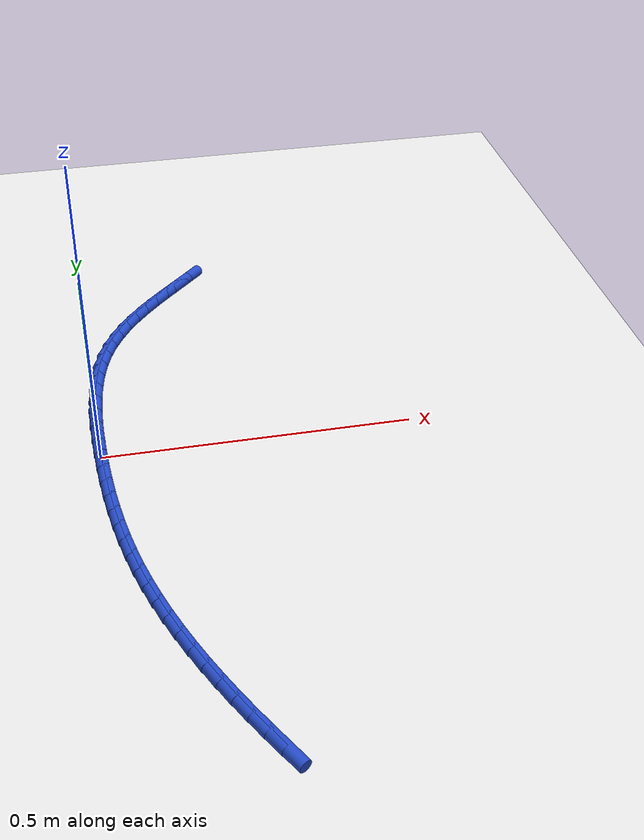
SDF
<sdf version="1.6">
 <world name="default">
  <model name="ground_plane">
   <static>1</static>
   <link name="link">
    <collision name="collision">
     <geometry><plane><normal>0 0 1</normal><size>100 100</size></plane></geometry>
     <surface><friction><ode><mu>100</mu><mu2>50</mu2></ode></friction></surface>
    </collision>
    <visual name="visual">
     <cast_shadows>0</cast_shadows>
     <geometry><plane><normal>0 0 1</normal><size>100 100</size></plane></geometry>
     <material>
      <script><uri>file://media/materials/scripts/gazebo.material</uri><name>Gazebo/WhiteGlow</name></script>
     </material>
    </visual>
   </link>
  </model>
  <model name="line">
   <link name="link_0">
    <pose>-3.0357660829594124e-18 4.85722573273506e-17 0.01 0 1.57 -1.5546843273915216</pose>
    <collision name="collision">
     <geometry><cylinder><radius>0.01</radius><length>0.08</length></cylinder></geometry>
    </collision>
    <visual name="visual">
     <material>
      <script><name>Gazebo/Blue</name><uri>file://media/materials/scripts/gazebo.material</uri></script>
     </material>
     <geometry><cylinder><radius>0.01</radius><length>0.08</length></cylinder></geometry>
    </visual>
   </link>
   <link name="link_1">
    <pose>-0.0005251453368446715 0.032590610323636665 0.01 0 1.57 1.5620680607582746</pose>
    <collision name="collision">
     <geometry><cylinder><radius>0.01</radius><length>0.08</length></cylinder></geometry>
    </collision>
    <visual name="visual">
     <material>
      <script><name>Gazebo/Blue</name><uri>file://media/materials/scripts/gazebo.material</uri></script>
     </material>
     <geometry><cylinder><radius>0.01</radius><length>0.08</length></cylinder></geometry>
    </visual>
   </link>
   <link name="link_2">
    <pose>-0.00023959789321550533 0.0653050339150706 0.01 0 1.57 1.5304487570608454</pose>
    <collision name="collision">
     <geometry><cylinder><radius>0.01</radius><length>0.08</length></cylinder></geometry>
    </collision>
    <visual name="visual">
     <material>
      <script><name>Gazebo/Blue</name><uri>file://media/materials/scripts/gazebo.material</uri></script>
     </material>
     <geometry><cylinder><radius>0.01</radius><length>0.08</length></cylinder></geometry>
    </visual>
   </link>
   <link name="link_3">
    <pose>0.0010764351715110935 0.09790473845484757 0.01 0 1.57 1.4913794073407562</pose>
    <collision name="collision">
     <geometry><cylinder><radius>0.01</radius><length>0.08</length></cylinder></geometry>
    </collision>
    <visual name="visual">
     <material>
      <script><name>Gazebo/Blue</name><uri>file://media/materials/scripts/gazebo.material</uri></script>
     </material>
     <geometry><cylinder><radius>0.01</radius><length>0.08</length></cylinder></geometry>
    </visual>
   </link>
   <link name="link_4">
    <pose>0.0036427466979587287 0.13015119162351318 0.01 0 1.57 1.4439677340581123</pose>
    <collision name="collision">
     <geometry><cylinder><radius>0.01</radius><length>0.08</length></cylinder></geometry>
    </collision>
    <visual name="visual">
     <material>
      <script><name>Gazebo/Blue</name><uri>file://media/materials/scripts/gazebo.material</uri></script>
     </material>
     <geometry><cylinder><radius>0.01</radius><length>0.08</length></cylinder></geometry>
    </visual>
   </link>
   <link name="link_5">
    <pose>0.007679129526751 0.16180586110161316 0.01 0 1.57 1.3871199302643595</pose>
    <collision name="collision">
     <geometry><cylinder><radius>0.01</radius><length>0.08</length></cylinder></geometry>
    </collision>
    <visual name="visual">
     <material>
      <script><name>Gazebo/Blue</name><uri>file://media/materials/scripts/gazebo.material</uri></script>
     </material>
     <geometry><cylinder><radius>0.01</radius><length>0.08</length></cylinder></geometry>
    </visual>
   </link>
   <link name="link_6">
    <pose>0.013405376498511517 0.19263021456969318 0.01 0 1.57 1.3195953880795979</pose>
    <collision name="collision">
     <geometry><cylinder><radius>0.01</radius><length>0.08</length></cylinder></geometry>
    </collision>
    <visual name="visual">
     <material>
      <script><name>Gazebo/Blue</name><uri>file://media/materials/scripts/gazebo.material</uri></script>
     </material>
     <geometry><cylinder><radius>0.01</radius><length>0.08</length></cylinder></geometry>
    </visual>
   </link>
   <link name="link_7">
    <pose>0.021041280453863866 0.22238571970829885 0.01 0 1.57 1.2401306549969577</pose>
    <collision name="collision">
     <geometry><cylinder><radius>0.01</radius><length>0.08</length></cylinder></geometry>
    </collision>
    <visual name="visual">
     <material>
      <script><name>Gazebo/Blue</name><uri>file://media/materials/scripts/gazebo.material</uri></script>
     </material>
     <geometry><cylinder><radius>0.01</radius><length>0.08</length></cylinder></geometry>
    </visual>
   </link>
   <link name="link_8">
    <pose>0.030806634233431655 0.2508338441979757 0.01 0 1.57 1.1489375937324762</pose>
    <collision name="collision">
     <geometry><cylinder><radius>0.01</radius><length>0.08</length></cylinder></geometry>
    </collision>
    <visual name="visual">
     <material>
      <script><name>Gazebo/Blue</name><uri>file://media/materials/scripts/gazebo.material</uri></script>
     </material>
     <geometry><cylinder><radius>0.01</radius><length>0.08</length></cylinder></geometry>
    </visual>
   </link>
   <link name="link_9">
    <pose>0.042892854640813535 0.2777636963658499 0.01 0 1.57 1.0588721254618167</pose>
    <collision name="collision">
     <geometry><cylinder><radius>0.01</radius><length>0.08</length></cylinder></geometry>
    </collision>
    <visual name="visual">
     <material>
      <script><name>Gazebo/Blue</name><uri>file://media/materials/scripts/gazebo.material</uri></script>
     </material>
     <geometry><cylinder><radius>0.01</radius><length>0.08</length></cylinder></geometry>
    </visual>
   </link>
   <link name="link_10">
    <pose>0.057207935721278844 0.3032404621424432 0.01 0 1.57 0.9792647785890002</pose>
    <collision name="collision">
     <geometry><cylinder><radius>0.01</radius><length>0.08</length></cylinder></geometry>
    </collision>
    <visual name="visual">
     <material>
      <script><name>Gazebo/Blue</name><uri>file://media/materials/scripts/gazebo.material</uri></script>
     </material>
     <geometry><cylinder><radius>0.01</radius><length>0.08</length></cylinder></geometry>
    </visual>
   </link>
   <link name="link_11">
    <pose>0.07349690129972358 0.3274880741592514 0.01 0 1.57 0.911712006468641</pose>
    <collision name="collision">
     <geometry><cylinder><radius>0.01</radius><length>0.08</length></cylinder></geometry>
    </collision>
    <visual name="visual">
     <material>
      <script><name>Gazebo/Blue</name><uri>file://media/materials/scripts/gazebo.material</uri></script>
     </material>
     <geometry><cylinder><radius>0.01</radius><length>0.08</length></cylinder></geometry>
    </visual>
   </link>
   <link name="link_12">
    <pose>0.09150282722308628 0.35073236254213264 0.01 0 1.57 0.8568393463129899</pose>
    <collision name="collision">
     <geometry><cylinder><radius>0.01</radius><length>0.08</length></cylinder></geometry>
    </collision>
    <visual name="visual">
     <material>
      <script><name>Gazebo/Blue</name><uri>file://media/materials/scripts/gazebo.material</uri></script>
     </material>
     <geometry><cylinder><radius>0.01</radius><length>0.08</length></cylinder></geometry>
    </visual>
   </link>
   <link name="link_13">
    <pose>0.11096878933830527 0.37319915741694454 0.01 0 1.57 0.814650837585814</pose>
    <collision name="collision">
     <geometry><cylinder><radius>0.01</radius><length>0.08</length></cylinder></geometry>
    </collision>
    <visual name="visual">
     <material>
      <script><name>Gazebo/Blue</name><uri>file://media/materials/scripts/gazebo.material</uri></script>
     </material>
     <geometry><cylinder><radius>0.01</radius><length>0.08</length></cylinder></geometry>
    </visual>
   </link>
   <link name="link_14">
    <pose>0.131637863492319 0.3951142889095449 0.01 0 1.57 0.7847972129373869</pose>
    <collision name="collision">
     <geometry><cylinder><radius>0.01</radius><length>0.08</length></cylinder></geometry>
    </collision>
    <visual name="visual">
     <material>
      <script><name>Gazebo/Blue</name><uri>file://media/materials/scripts/gazebo.material</uri></script>
     </material>
     <geometry><cylinder><radius>0.01</radius><length>0.08</length></cylinder></geometry>
    </visual>
   </link>
   <link name="link_15">
    <pose>0.15325312553206605 0.4167035871457918 0.01 0 1.57 0.7667851147117307</pose>
    <collision name="collision">
     <geometry><cylinder><radius>0.01</radius><length>0.08</length></cylinder></geometry>
    </collision>
    <visual name="visual">
     <material>
      <script><name>Gazebo/Blue</name><uri>file://media/materials/scripts/gazebo.material</uri></script>
     </material>
     <geometry><cylinder><radius>0.01</radius><length>0.08</length></cylinder></geometry>
    </visual>
   </link>
   <link name="link_16">
    <pose>0.17555765130448472 0.43819288225154296 0.01 0 1.57 0.7601117168905399</pose>
    <collision name="collision">
     <geometry><cylinder><radius>0.01</radius><length>0.08</length></cylinder></geometry>
    </collision>
    <visual name="visual">
     <material>
      <script><name>Gazebo/Blue</name><uri>file://media/materials/scripts/gazebo.material</uri></script>
     </material>
     <geometry><cylinder><radius>0.01</radius><length>0.08</length></cylinder></geometry>
    </visual>
   </link>
   <link name="link_17">
    <pose>0.19829451665651351 0.459808004352656 0.01 0 1.57 0.7643335130624358</pose>
    <collision name="collision">
     <geometry><cylinder><radius>0.01</radius><length>0.08</length></cylinder></geometry>
    </collision>
    <visual name="visual">
     <material>
      <script><name>Gazebo/Blue</name><uri>file://media/materials/scripts/gazebo.material</uri></script>
     </material>
     <geometry><cylinder><radius>0.01</radius><length>0.08</length></cylinder></geometry>
    </visual>
   </link>
   <link name="link_221">
    <pose>0.17136423423630137 -0.565173161950905 0.01 0 1.57 -1.0383534861025536</pose>
    <collision name="collision">
     <geometry><cylinder><radius>0.01</radius><length>0.08</length></cylinder></geometry>
    </collision>
    <visual name="visual">
     <material>
      <script><name>Gazebo/Blue</name><uri>file://media/materials/scripts/gazebo.material</uri></script>
     </material>
     <geometry><cylinder><radius>0.01</radius><length>0.08</length></cylinder></geometry>
    </visual>
   </link>
   <link name="link_222">
    <pose>0.15563733322972562 -0.5384813494476495 0.01 0 1.57 -1.054129569771247</pose>
    <collision name="collision">
     <geometry><cylinder><radius>0.01</radius><length>0.08</length></cylinder></geometry>
    </collision>
    <visual name="visual">
     <material>
      <script><name>Gazebo/Blue</name><uri>file://media/materials/scripts/gazebo.material</uri></script>
     </material>
     <geometry><cylinder><radius>0.01</radius><length>0.08</length></cylinder></geometry>
    </visual>
   </link>
   <link name="link_223">
    <pose>0.14028187112824117 -0.5114539502654648 0.01 0 1.57 -1.0735329758635228</pose>
    <collision name="collision">
     <geometry><cylinder><radius>0.01</radius><length>0.08</length></cylinder></geometry>
    </collision>
    <visual name="visual">
     <material>
      <script><name>Gazebo/Blue</name><uri>file://media/materials/scripts/gazebo.material</uri></script>
     </material>
     <geometry><cylinder><radius>0.01</radius><length>0.08</length></cylinder></geometry>
    </visual>
   </link>
   <link name="link_224">
    <pose>0.12536520005472734 -0.4839706700639059 0.01 0 1.57 -1.0953396615992697</pose>
    <collision name="collision">
     <geometry><cylinder><radius>0.01</radius><length>0.08</length></cylinder></geometry>
    </collision>
    <visual name="visual">
     <material>
      <script><name>Gazebo/Blue</name><uri>file://media/materials/scripts/gazebo.material</uri></script>
     </material>
     <geometry><cylinder><radius>0.01</radius><length>0.08</length></cylinder></geometry>
    </visual>
   </link>
   <link name="link_225">
    <pose>0.11096439939413487 -0.4559997866900855 0.01 0 1.57 -1.118736720682221</pose>
    <collision name="collision">
     <geometry><cylinder><radius>0.01</radius><length>0.08</length></cylinder></geometry>
    </collision>
    <visual name="visual">
     <material>
      <script><name>Gazebo/Blue</name><uri>file://media/materials/scripts/gazebo.material</uri></script>
     </material>
     <geometry><cylinder><radius>0.01</radius><length>0.08</length></cylinder></geometry>
    </visual>
   </link>
   <link name="link_226">
    <pose>0.09716441953555671 -0.4275812479070625 0.01 0 1.57 -1.1438216043483591</pose>
    <collision name="collision">
     <geometry><cylinder><radius>0.01</radius><length>0.08</length></cylinder></geometry>
    </collision>
    <visual name="visual">
     <material>
      <script><name>Gazebo/Blue</name><uri>file://media/materials/scripts/gazebo.material</uri></script>
     </material>
     <geometry><cylinder><radius>0.01</radius><length>0.08</length></cylinder></geometry>
    </visual>
   </link>
   <link name="link_227">
    <pose>0.08405043675113401 -0.3987570582699872 0.01 0 1.57 -1.1707268530270047</pose>
    <collision name="collision">
     <geometry><cylinder><radius>0.01</radius><length>0.08</length></cylinder></geometry>
    </collision>
    <visual name="visual">
     <material>
      <script><name>Gazebo/Blue</name><uri>file://media/materials/scripts/gazebo.material</uri></script>
     </material>
     <geometry><cylinder><radius>0.01</radius><length>0.08</length></cylinder></geometry>
    </visual>
   </link>
   <link name="link_228">
    <pose>0.07170762731300784 -0.3695692223340098 0.01 0 1.57 -1.199594474704689</pose>
    <collision name="collision">
     <geometry><cylinder><radius>0.01</radius><length>0.08</length></cylinder></geometry>
    </collision>
    <visual name="visual">
     <material>
      <script><name>Gazebo/Blue</name><uri>file://media/materials/scripts/gazebo.material</uri></script>
     </material>
     <geometry><cylinder><radius>0.01</radius><length>0.08</length></cylinder></geometry>
    </visual>
   </link>
   <link name="link_229">
    <pose>0.06022116749331929 -0.34005974465428107 0.01 0 1.57 -1.2305747992664238</pose>
    <collision name="collision">
     <geometry><cylinder><radius>0.01</radius><length>0.08</length></cylinder></geometry>
    </collision>
    <visual name="visual">
     <material>
      <script><name>Gazebo/Blue</name><uri>file://media/materials/scripts/gazebo.material</uri></script>
     </material>
     <geometry><cylinder><radius>0.01</radius><length>0.08</length></cylinder></geometry>
    </visual>
   </link>
   <link name="link_230">
    <pose>0.0496762335642092 -0.31027062978595066 0.01 0 1.57 -1.2638245633405798</pose>
    <collision name="collision">
     <geometry><cylinder><radius>0.01</radius><length>0.08</length></cylinder></geometry>
    </collision>
    <visual name="visual">
     <material>
      <script><name>Gazebo/Blue</name><uri>file://media/materials/scripts/gazebo.material</uri></script>
     </material>
     <geometry><cylinder><radius>0.01</radius><length>0.08</length></cylinder></geometry>
    </visual>
   </link>
   <link name="link_231">
    <pose>0.040158001797819226 -0.28024388228417046 0.01 0 1.57 -1.2994867678854782</pose>
    <collision name="collision">
     <geometry><cylinder><radius>0.01</radius><length>0.08</length></cylinder></geometry>
    </collision>
    <visual name="visual">
     <material>
      <script><name>Gazebo/Blue</name><uri>file://media/materials/scripts/gazebo.material</uri></script>
     </material>
     <geometry><cylinder><radius>0.01</radius><length>0.08</length></cylinder></geometry>
    </visual>
   </link>
   <link name="link_232">
    <pose>0.031751013849728726 -0.25002123820286143 0.01 0 1.57 -1.3362322524168613</pose>
    <collision name="collision">
     <geometry><cylinder><radius>0.01</radius><length>0.08</length></cylinder></geometry>
    </collision>
    <visual name="visual">
     <material>
      <script><name>Gazebo/Blue</name><uri>file://media/materials/scripts/gazebo.material</uri></script>
     </material>
     <geometry><cylinder><radius>0.01</radius><length>0.08</length></cylinder></geometry>
    </visual>
   </link>
   <link name="link_233">
    <pose>0.024486718577179795 -0.21962197045449913 0.01 0 1.57 -1.371410614850404</pose>
    <collision name="collision">
     <geometry><cylinder><radius>0.01</radius><length>0.08</length></cylinder></geometry>
    </collision>
    <visual name="visual">
     <material>
      <script><name>Gazebo/Blue</name><uri>file://media/materials/scripts/gazebo.material</uri></script>
     </material>
     <geometry><cylinder><radius>0.01</radius><length>0.08</length></cylinder></geometry>
    </visual>
   </link>
   <link name="link_234">
    <pose>0.0183042307452239 -0.18902628613023936 0.01 0 1.57 -1.404547739492913</pose>
    <collision name="collision">
     <geometry><cylinder><radius>0.01</radius><length>0.08</length></cylinder></geometry>
    </collision>
    <visual name="visual">
     <material>
      <script><name>Gazebo/Blue</name><uri>file://media/materials/scripts/gazebo.material</uri></script>
     </material>
     <geometry><cylinder><radius>0.01</radius><length>0.08</length></cylinder></geometry>
    </visual>
   </link>
   <link name="link_235">
    <pose>0.0131334207108978 -0.158210481085603 0.01 0 1.57 -1.4354627628718293</pose>
    <collision name="collision">
     <geometry><cylinder><radius>0.01</radius><length>0.08</length></cylinder></geometry>
    </collision>
    <visual name="visual">
     <material>
      <script><name>Gazebo/Blue</name><uri>file://media/materials/scripts/gazebo.material</uri></script>
     </material>
     <geometry><cylinder><radius>0.01</radius><length>0.08</length></cylinder></geometry>
    </visual>
   </link>
   <link name="link_236">
    <pose>0.008904158831238226 -0.12715085117611089 0.01 0 1.57 -1.4640176693783393</pose>
    <collision name="collision">
     <geometry><cylinder><radius>0.01</radius><length>0.08</length></cylinder></geometry>
    </collision>
    <visual name="visual">
     <material>
      <script><name>Gazebo/Blue</name><uri>file://media/materials/scripts/gazebo.material</uri></script>
     </material>
     <geometry><cylinder><radius>0.01</radius><length>0.08</length></cylinder></geometry>
    </visual>
   </link>
   <link name="link_237">
    <pose>0.005546315463281924 -0.09582369225728377 0.01 0 1.57 -1.4901152837346126</pose>
    <collision name="collision">
     <geometry><cylinder><radius>0.01</radius><length>0.08</length></cylinder></geometry>
    </collision>
    <visual name="visual">
     <material>
      <script><name>Gazebo/Blue</name><uri>file://media/materials/scripts/gazebo.material</uri></script>
     </material>
     <geometry><cylinder><radius>0.01</radius><length>0.08</length></cylinder></geometry>
    </visual>
   </link>
   <link name="link_238">
    <pose>0.0029897609640655715 -0.06420530018464167 0.01 0 1.57 -1.5136957678025176</pose>
    <collision name="collision">
     <geometry><cylinder><radius>0.01</radius><length>0.08</length></cylinder></geometry>
    </collision>
    <visual name="visual">
     <material>
      <script><name>Gazebo/Blue</name><uri>file://media/materials/scripts/gazebo.material</uri></script>
     </material>
     <geometry><cylinder><radius>0.01</radius><length>0.08</length></cylinder></geometry>
    </visual>
   </link>
   <link name="link_239">
    <pose>0.001164365690626043 -0.03227197081370709 0.01 0 1.57 -1.5347321876185547</pose>
    <collision name="collision">
     <geometry><cylinder><radius>0.01</radius><length>0.08</length></cylinder></geometry>
    </collision>
    <visual name="visual">
     <material>
      <script><name>Gazebo/Blue</name><uri>file://media/materials/scripts/gazebo.material</uri></script>
     </material>
     <geometry><cylinder><radius>0.01</radius><length>0.08</length></cylinder></geometry>
    </visual>
   </link>
   <link name="link_240">
    <pose>4.553649124439119e-18 -2.0816681711721685e-17 0.01 0 1.57 -1.553225658928981</pose>
    <collision name="collision">
     <geometry><cylinder><radius>0.01</radius><length>0.08</length></cylinder></geometry>
    </collision>
    <visual name="visual">
     <material>
      <script><name>Gazebo/Blue</name><uri>file://media/materials/scripts/gazebo.material</uri></script>
     </material>
     <geometry><cylinder><radius>0.01</radius><length>0.08</length></cylinder></geometry>
    </visual>
   </link>
   <link name="link_241">
    <pose>-0.0005734657507758078 0.032634316400958756 0.01 0 1.57 -1.56920048109944</pose>
    <collision name="collision">
     <geometry><cylinder><radius>0.01</radius><length>0.08</length></cylinder></geometry>
    </collision>
    <visual name="visual">
     <material>
      <script><name>Gazebo/Blue</name><uri>file://media/materials/scripts/gazebo.material</uri></script>
     </material>
     <geometry><cylinder><radius>0.01</radius><length>0.08</length></cylinder></geometry>
    </visual>
   </link>
   <link name="link_242">
    <pose>-0.0006261612046646512 0.06565468253364834 0.01 0 1.57 -1.5612594255907892</pose>
    <collision name="collision">
     <geometry><cylinder><radius>0.01</radius><length>0.08</length></cylinder></geometry>
    </collision>
    <visual name="visual">
     <material>
      <script><name>Gazebo/Blue</name><uri>file://media/materials/scripts/gazebo.material</uri></script>
     </material>
     <geometry><cylinder><radius>0.01</radius><length>0.08</length></cylinder></geometry>
    </visual>
   </link>
  </model>
 </world>
</sdf>
